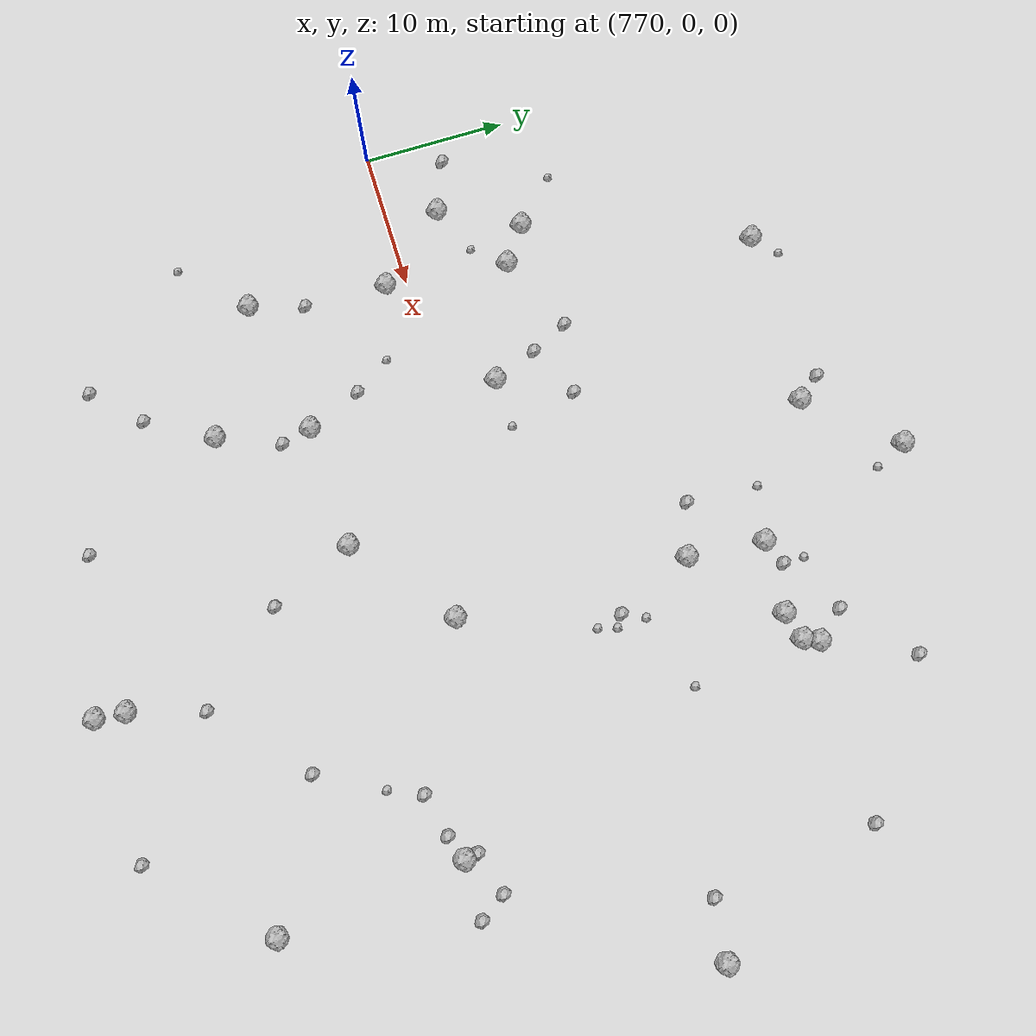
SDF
<sdf version="1.6">
 <world name="default">
  <include><uri>model://sun</uri></include>
  <model name="rock1_20_4">
   <include><uri>model://rock1</uri><pose>804.3929994888645 12.052856315188997 0.5 0 0 0</pose></include>
  </model>
  <model name="rock1_20_5">
   <include><uri>model://rock1</uri><pose>803.7647936349352 -3.545709405885699 0.5 0 0 0</pose></include>
  </model>
  <model name="rock1_20_6">
   <include><uri>model://rock1</uri><pose>804.8931340954357 17.254664525682273 0.5 0 0 0</pose></include>
  </model>
  <model name="rock1_20_7">
   <include><uri>model://rock1</uri><pose>809.7592334390532 16.8154549405823 0.5 0 0 0</pose></include>
  </model>
  <model name="rock1_20_8">
   <include><uri>model://rock1</uri><pose>812.1245025800346 18.31242071275622 0.5 0 0 0</pose></include>
  </model>
  <model name="rock1_20_9">
   <include><uri>model://rock1</uri><pose>803.3632652521749 -25.18502509824751 0.5 0 0 0</pose></include>
  </model>
  <model name="rock1_20_10">
   <include><uri>model://rock1</uri><pose>778.6966446815636 -10.958962114586438 0.5 0 0 0</pose></include>
  </model>
  <model name="rock1_20_11">
   <include><uri>model://rock1</uri><pose>796.3673368067776 23.007172358823517 0.5 0 0 0</pose></include>
  </model>
  <model name="rock1_20_12">
   <include><uri>model://rock1</uri><pose>811.68787980897 17.31083262822972 0.5 0 0 0</pose></include>
  </model>
  <model name="rock1_20_13">
   <include><uri>model://rock1</uri><pose>775.5165281205772 3.572026587967244 0.5 0 0 0</pose></include>
  </model>
  <model name="rock1_20_14">
   <include><uri>model://rock1</uri><pose>779.929099291876 -1.4513169227305376 0.5 0 0 0</pose></include>
  </model>
  <model name="rock1_20_15">
   <include><uri>model://rock1</uri><pose>778.2922233125834 8.92816658425366 0.5 0 0 0</pose></include>
  </model>
  <model name="rock1_20_16">
   <include><uri>model://rock1</uri><pose>788.5265677559695 -9.167473191481307 0.5 0 0 0</pose></include>
  </model>
  <model name="rock1_20_17">
   <include><uri>model://rock1</uri><pose>784.0527070676144 24.023035354992437 0.5 0 0 0</pose></include>
  </model>
  <model name="rock1_20_18">
   <include><uri>model://rock1</uri><pose>818.3179923365203 -7.34327402366549 0.5 0 0 0</pose></include>
  </model>
  <model name="rock1_20_19">
   <include><uri>model://rock1</uri><pose>787.2791818055276 -15.420191165805825 0.5 0 0 0</pose></include>
  </model>
  <model name="rock1_20_20">
   <include><uri>model://rock1</uri><pose>819.3121664410858 -19.452726830215642 0.5 0 0 0</pose></include>
  </model>
  <model name="rock1_20_21">
   <include><uri>model://rock1</uri><pose>797.0875885361197 -8.86943137972234 0.5 0 0 0</pose></include>
  </model>
  <model name="rock1_20_22">
   <include><uri>model://rock1</uri><pose>788.8733712315403 3.7808664047589033 0.5 0 0 0</pose></include>
  </model>
  <model name="rock1_20_23">
   <include><uri>model://rock1</uri><pose>801.2926520475804 28.486907695647872 0.5 0 0 0</pose></include>
  </model>
  <model name="rock1_20_24">
   <include><uri>model://rock1</uri><pose>780.8165268180093 7.100915453419887 0.5 0 0 0</pose></include>
  </model>
  <model name="rock1_20_25">
   <include><uri>model://rock1</uri><pose>828.7573782678123 5.949081385138115 0.5 0 0 0</pose></include>
  </model>
  <model name="rock1_20_26">
   <include><uri>model://rock1</uri><pose>803.1993814586327 -27.175472497737854 0.5 0 0 0</pose></include>
  </model>
  <model name="rock2_20_0">
   <include><uri>model://rock2</uri><pose>813.8205504834507 -8.606979679172124 0.3 0 0 0</pose></include>
  </model>
  <model name="rock2_20_1">
   <include><uri>model://rock2</uri><pose>800.8502433900767 13.317529654199895 0.3 0 0 0</pose></include>
  </model>
  <model name="rock2_20_2">
   <include><uri>model://rock2</uri><pose>791.239255291302 8.601290468225848 0.3 0 0 0</pose></include>
  </model>
  <model name="rock2_20_3">
   <include><uri>model://rock2</uri><pose>781.6197147220499 -22.814234395836213 0.3 0 0 0</pose></include>
  </model>
  <model name="rock2_20_4">
   <include><uri>model://rock2</uri><pose>779.7379806204759 -7.189507583680353 0.3 0 0 0</pose></include>
  </model>
  <model name="rock2_20_5">
   <include><uri>model://rock2</uri><pose>787.6041966585083 6.9157133372306205 0.3 0 0 0</pose></include>
  </model>
  <model name="rock2_20_6">
   <include><uri>model://rock2</uri><pose>771.7991570365264 5.0564832353881854 0.3 0 0 0</pose></include>
  </model>
  <model name="rock2_20_7">
   <include><uri>model://rock2</uri><pose>806.619125787224 17.973227042867748 0.3 0 0 0</pose></include>
  </model>
  <model name="rock2_20_8">
   <include><uri>model://rock2</uri><pose>820.9432176644295 -5.665915605129683 0.3 0 0 0</pose></include>
  </model>
  <model name="rock2_20_9">
   <include><uri>model://rock2</uri><pose>799.5552841979991 -14.519947270572455 0.3 0 0 0</pose></include>
  </model>
  <model name="rock2_20_10">
   <include><uri>model://rock2</uri><pose>792.6480835264132 -25.239023792591794 0.3 0 0 0</pose></include>
  </model>
  <model name="rock2_20_11">
   <include><uri>model://rock2</uri><pose>786.896556800951 -5.428049656577766 0.3 0 0 0</pose></include>
  </model>
  <model name="rock2_20_12">
   <include><uri>model://rock2</uri><pose>824.9462804639896 6.54493123575552 0.3 0 0 0</pose></include>
  </model>
  <model name="rock2_20_13">
   <include><uri>model://rock2</uri><pose>812.7388667938131 -26.349566341078155 0.3 0 0 0</pose></include>
  </model>
  <model name="rock2_20_14">
   <include><uri>model://rock2</uri><pose>810.5032577890611 20.389265063396877 0.3 0 0 0</pose></include>
  </model>
  <model name="rock2_20_15">
   <include><uri>model://rock2</uri><pose>822.0418910898419 -7.373594969623568 0.3 0 0 0</pose></include>
  </model>
  <model name="rock2_20_16">
   <include><uri>model://rock2</uri><pose>806.6673599188965 6.777577698201753 0.3 0 0 0</pose></include>
  </model>
  <model name="rock2_20_17">
   <include><uri>model://rock2</uri><pose>784.6476994992535 -19.76676727653924 0.3 0 0 0</pose></include>
  </model>
  <model name="rock2_20_18">
   <include><uri>model://rock2</uri><pose>795.0232784324834 24.766605331176436 0.3 0 0 0</pose></include>
  </model>
  <model name="rock2_20_19">
   <include><uri>model://rock2</uri><pose>804.7949146813517 -20.31035515833253 0.3 0 0 0</pose></include>
  </model>
  <model name="rock2_20_20">
   <include><uri>model://rock2</uri><pose>788.9626702255994 -11.223796020169303 0.3 0 0 0</pose></include>
  </model>
  <model name="rock2_20_21">
   <include><uri>model://rock2</uri><pose>816.6484651071314 -7.927203740629981 0.3 0 0 0</pose></include>
  </model>
  <model name="rock2_20_22">
   <include><uri>model://rock2</uri><pose>814.792202820598 24.16217677684071 0.3 0 0 0</pose></include>
  </model>
  <model name="rock2_20_23">
   <include><uri>model://rock2</uri><pose>786.3271018079892 9.520477491988622 0.3 0 0 0</pose></include>
  </model>
  <model name="rock2_20_24">
   <include><uri>model://rock2</uri><pose>823.7704698816065 17.575141218342857 0.3 0 0 0</pose></include>
  </model>
  <model name="rock2_20_25">
   <include><uri>model://rock2</uri><pose>818.1684646329921 -6.467985025786383 0.3 0 0 0</pose></include>
  </model>
  <model name="rock2_20_26">
   <include><uri>model://rock2</uri><pose>810.5530312459956 -14.944423612030866 0.3 0 0 0</pose></include>
  </model>
  <model name="rock3_20_0">
   <include><uri>model://rock3</uri><pose>784.0348193690705 24.290492161905625 0.2 0 0 0</pose></include>
  </model>
  <model name="rock3_20_1">
   <include><uri>model://rock3</uri><pose>807.3649191805869 8.214079327985615 0.2 0 0 0</pose></include>
  </model>
  <model name="rock3_20_2">
   <include><uri>model://rock3</uri><pose>792.3312278531068 3.855938112796686 0.2 0 0 0</pose></include>
  </model>
  <model name="rock3_20_3">
   <include><uri>model://rock3</uri><pose>802.3049155541305 26.32351521932351 0.2 0 0 0</pose></include>
  </model>
  <model name="rock3_20_4">
   <include><uri>model://rock3</uri><pose>812.8673466448048 -10.796327813015136 0.2 0 0 0</pose></include>
  </model>
  <model name="rock3_20_5">
   <include><uri>model://rock3</uri><pose>774.527568418787 -15.035272763588086 0.2 0 0 0</pose></include>
  </model>
  <model name="rock3_20_6">
   <include><uri>model://rock3</uri><pose>785.2052393038638 -2.920780500164529 0.2 0 0 0</pose></include>
  </model>
  <model name="rock3_20_7">
   <include><uri>model://rock3</uri><pose>775.1814433165149 11.893751824564767 0.2 0 0 0</pose></include>
  </model>
  <model name="rock3_20_8">
   <include><uri>model://rock3</uri><pose>801.161529626125 18.167705582137664 0.2 0 0 0</pose></include>
  </model>
  <model name="rock3_20_9">
   <include><uri>model://rock3</uri><pose>807.4346906306223 6.22977652771295 0.2 0 0 0</pose></include>
  </model>
  <model name="rock3_20_10">
   <include><uri>model://rock3</uri><pose>785.619607213158 25.516811993860372 0.2 0 0 0</pose></include>
  </model>
  <model name="rock3_20_11">
   <include><uri>model://rock3</uri><pose>778.970952754183 4.99988624977081 0.2 0 0 0</pose></include>
  </model>
  <model name="rock3_20_12">
   <include><uri>model://rock3</uri><pose>812.4820547984199 9.741975890205218 0.2 0 0 0</pose></include>
  </model>
  <model name="rock3_20_13">
   <include><uri>model://rock3</uri><pose>806.625672648477 19.39391597562654 0.2 0 0 0</pose></include>
  </model>
  <model name="rock3_20_14">
   <include><uri>model://rock3</uri><pose>807.0965657468847 4.988336533803512 0.2 0 0 0</pose></include>
  </model>
 </world>
</sdf>
